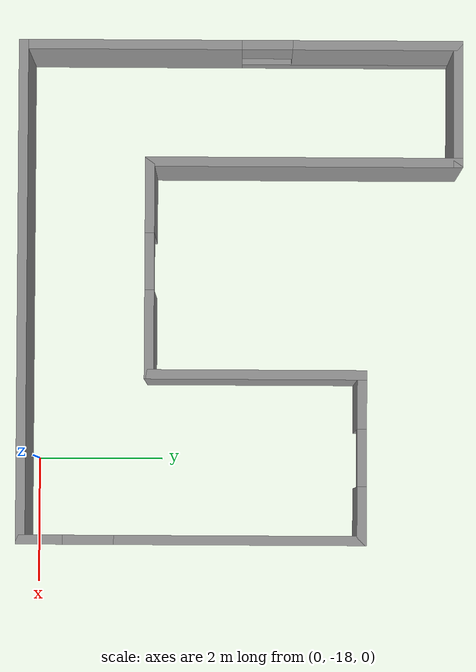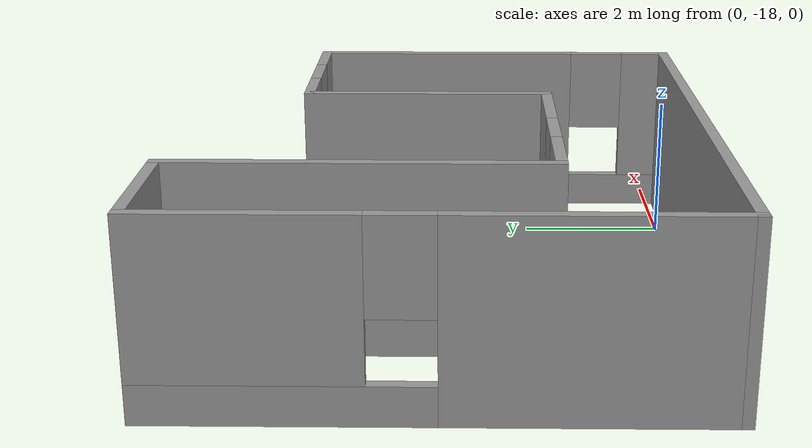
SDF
<?xml version='1.0'?>
<sdf version='1.6'>
  <model name='uHall'>
    <pose frame=''>-2.57113 -14.7501 0 0 -0 0</pose>
    <link name='Wall_12'>
      <pose frame=''>-3.9 0 0 0 -0 1.5708</pose>
      <visual name='Wall_12_Visual_0'>
        <pose frame=''>-1.74266 0 1.25 0 -0 0</pose>
        <geometry>
          <box>
            <size>3.51468 0.15 2.5</size>
          </box>
        </geometry>
        <material>
          <script>
            <uri>file://media/materials/scripts/gazebo.material</uri>
            <name>Gazebo/Grey</name>
          </script>
          <ambient>1 1 1 1</ambient>
        </material>
        <meta>
          <layer>0</layer>
        </meta>
      </visual>
      <collision name='Wall_12_Collision_0'>
        <geometry>
          <box>
            <size>3.51468 0.15 2.5</size>
          </box>
        </geometry>
        <pose frame=''>-1.74266 0 1.25 0 -0 0</pose>
      </collision>
      <visual name='Wall_12_Visual_1'>
        <pose frame=''>1.75734 0 0.25 0 -0 0</pose>
        <geometry>
          <box>
            <size>3.48532 0.15 0.5</size>
          </box>
        </geometry>
        <material>
          <script>
            <uri>file://media/materials/scripts/gazebo.material</uri>
            <name>Gazebo/Grey</name>
          </script>
          <ambient>1 1 1 1</ambient>
        </material>
        <meta>
          <layer>0</layer>
        </meta>
      </visual>
      <collision name='Wall_12_Collision_1'>
        <geometry>
          <box>
            <size>3.48532 0.15 0.5</size>
          </box>
        </geometry>
        <pose frame=''>1.75734 0 0.25 0 -0 0</pose>
      </collision>
      <visual name='Wall_12_Visual_2'>
        <pose frame=''>2.15734 0 1.5 0 -0 0</pose>
        <geometry>
          <box>
            <size>2.68532 0.15 2</size>
          </box>
        </geometry>
        <material>
          <script>
            <uri>file://media/materials/scripts/gazebo.material</uri>
            <name>Gazebo/Grey</name>
          </script>
          <ambient>1 1 1 1</ambient>
        </material>
        <meta>
          <layer>0</layer>
        </meta>
      </visual>
      <collision name='Wall_12_Collision_2'>
        <geometry>
          <box>
            <size>2.68532 0.15 2</size>
          </box>
        </geometry>
        <pose frame=''>2.15734 0 1.5 0 -0 0</pose>
      </collision>
      <visual name='Wall_12_Visual_3'>
        <pose frame=''>0.41468 0 1.9 0 -0 0</pose>
        <geometry>
          <box>
            <size>0.8 0.15 1.2</size>
          </box>
        </geometry>
        <material>
          <script>
            <uri>file://media/materials/scripts/gazebo.material</uri>
            <name>Gazebo/Grey</name>
          </script>
          <ambient>1 1 1 1</ambient>
        </material>
        <meta>
          <layer>0</layer>
        </meta>
      </visual>
      <collision name='Wall_12_Collision_3'>
        <geometry>
          <box>
            <size>0.8 0.15 1.2</size>
          </box>
        </geometry>
        <pose frame=''>0.41468 0 1.9 0 -0 0</pose>
      </collision>
    </link>
    <link name='Wall_13'>
      <collision name='Wall_13_Collision'>
        <geometry>
          <box>
            <size>2 0.15 2.5</size>
          </box>
        </geometry>
        <pose frame=''>0 0 1.25 0 -0 0</pose>
      </collision>
      <visual name='Wall_13_Visual'>
        <pose frame=''>0 0 1.25 0 -0 0</pose>
        <geometry>
          <box>
            <size>2 0.15 2.5</size>
          </box>
        </geometry>
        <material>
          <script>
            <uri>file://media/materials/scripts/gazebo.material</uri>
            <name>Gazebo/Grey</name>
          </script>
          <ambient>1 1 1 1</ambient>
        </material>
        <meta>
          <layer>0</layer>
        </meta>
      </visual>
      <pose frame=''>-2.975 3.425 0 0 -0 0</pose>
    </link>
    <link name='Wall_14'>
      <collision name='Wall_14_Collision'>
        <geometry>
          <box>
            <size>5 0.15 2.5</size>
          </box>
        </geometry>
        <pose frame=''>0 0 1.25 0 -0 0</pose>
      </collision>
      <visual name='Wall_14_Visual'>
        <pose frame=''>0 0 1.25 0 -0 0</pose>
        <geometry>
          <box>
            <size>5 0.15 2.5</size>
          </box>
        </geometry>
        <material>
          <script>
            <uri>file://media/materials/scripts/gazebo.material</uri>
            <name>Gazebo/Grey</name>
          </script>
          <ambient>1 1 1 1</ambient>
        </material>
        <meta>
          <layer>0</layer>
        </meta>
      </visual>
      <pose frame=''>-2.05 1 0 0 0 -1.5708</pose>
    </link>
    <link name='Wall_15'>
      <pose frame=''>-0.375 -1.425 0 0 -0 0</pose>
      <visual name='Wall_15_Visual_0'>
        <pose frame=''>-1.15084 0 1.25 0 -0 0</pose>
        <geometry>
          <box>
            <size>1.19833 0.15 2.5</size>
          </box>
        </geometry>
        <material>
          <script>
            <uri>file://media/materials/scripts/gazebo.material</uri>
            <name>Gazebo/Grey</name>
          </script>
          <ambient>1 1 1 1</ambient>
        </material>
        <meta>
          <layer>0</layer>
        </meta>
      </visual>
      <collision name='Wall_15_Collision_0'>
        <geometry>
          <box>
            <size>1.19833 0.15 2.5</size>
          </box>
        </geometry>
        <pose frame=''>-1.15084 0 1.25 0 -0 0</pose>
      </collision>
      <visual name='Wall_15_Visual_1'>
        <pose frame=''>1.04916 0 1.25 0 -0 0</pose>
        <geometry>
          <box>
            <size>1.40167 0.15 2.5</size>
          </box>
        </geometry>
        <material>
          <script>
            <uri>file://media/materials/scripts/gazebo.material</uri>
            <name>Gazebo/Grey</name>
          </script>
          <ambient>1 1 1 1</ambient>
        </material>
        <meta>
          <layer>0</layer>
        </meta>
      </visual>
      <collision name='Wall_15_Collision_1'>
        <geometry>
          <box>
            <size>1.40167 0.15 2.5</size>
          </box>
        </geometry>
        <pose frame=''>1.04916 0 1.25 0 -0 0</pose>
      </collision>
      <visual name='Wall_15_Visual_2'>
        <pose frame=''>-0.10167 0 2.25 0 -0 0</pose>
        <geometry>
          <box>
            <size>0.9 0.15 0.5</size>
          </box>
        </geometry>
        <material>
          <script>
            <uri>file://media/materials/scripts/gazebo.material</uri>
            <name>Gazebo/Grey</name>
          </script>
          <ambient>1 1 1 1</ambient>
        </material>
        <meta>
          <layer>0</layer>
        </meta>
      </visual>
      <collision name='Wall_15_Collision_2'>
        <geometry>
          <box>
            <size>0.9 0.15 0.5</size>
          </box>
        </geometry>
        <pose frame=''>-0.10167 0 2.25 0 -0 0</pose>
      </collision>
    </link>
    <link name='Wall_16'>
      <collision name='Wall_16_Collision'>
        <geometry>
          <box>
            <size>3.5 0.15 2.5</size>
          </box>
        </geometry>
        <pose frame=''>0 0 1.25 0 -0 0</pose>
      </collision>
      <visual name='Wall_16_Visual'>
        <pose frame=''>0 0 1.25 0 -0 0</pose>
        <geometry>
          <box>
            <size>3.5 0.15 2.5</size>
          </box>
        </geometry>
        <material>
          <script>
            <uri>file://media/materials/scripts/gazebo.material</uri>
            <name>Gazebo/Grey</name>
          </script>
          <ambient>1 1 1 1</ambient>
        </material>
        <meta>
          <layer>0</layer>
        </meta>
      </visual>
      <pose frame=''>1.3 0.25 0 0 -0 1.5708</pose>
    </link>
    <link name='Wall_17'>
      <pose frame=''>2.6 1.925 0 0 -0 0</pose>
      <visual name='Wall_17_Visual_0'>
        <pose frame=''>-0.91265 0 1.25 0 -0 0</pose>
        <geometry>
          <box>
            <size>0.924701 0.15 2.5</size>
          </box>
        </geometry>
        <material>
          <script>
            <uri>file://media/materials/scripts/gazebo.material</uri>
            <name>Gazebo/Grey</name>
          </script>
          <ambient>1 1 1 1</ambient>
        </material>
        <meta>
          <layer>0</layer>
        </meta>
      </visual>
      <collision name='Wall_17_Collision_0'>
        <geometry>
          <box>
            <size>0.924701 0.15 2.5</size>
          </box>
        </geometry>
        <pose frame=''>-0.91265 0 1.25 0 -0 0</pose>
      </collision>
      <visual name='Wall_17_Visual_1'>
        <pose frame=''>0.91235 0 1.25 0 -0 0</pose>
        <geometry>
          <box>
            <size>0.925299 0.15 2.5</size>
          </box>
        </geometry>
        <material>
          <script>
            <uri>file://media/materials/scripts/gazebo.material</uri>
            <name>Gazebo/Grey</name>
          </script>
          <ambient>1 1 1 1</ambient>
        </material>
        <meta>
          <layer>0</layer>
        </meta>
      </visual>
      <collision name='Wall_17_Collision_1'>
        <geometry>
          <box>
            <size>0.925299 0.15 2.5</size>
          </box>
        </geometry>
        <pose frame=''>0.91235 0 1.25 0 -0 0</pose>
      </collision>
      <visual name='Wall_17_Visual_2'>
        <pose frame=''>-0.000299 0 2.25 0 -0 0</pose>
        <geometry>
          <box>
            <size>0.9 0.15 0.5</size>
          </box>
        </geometry>
        <material>
          <script>
            <uri>file://media/materials/scripts/gazebo.material</uri>
            <name>Gazebo/Grey</name>
          </script>
          <ambient>1 1 1 1</ambient>
        </material>
        <meta>
          <layer>0</layer>
        </meta>
      </visual>
      <collision name='Wall_17_Collision_2'>
        <geometry>
          <box>
            <size>0.9 0.15 0.5</size>
          </box>
        </geometry>
        <pose frame=''>-0.000299 0 2.25 0 -0 0</pose>
      </collision>
    </link>
    <link name='Wall_18'>
      <pose frame=''>3.9 -0.75 0 0 0 -1.5708</pose>
      <visual name='Wall_18_Visual_0'>
        <pose frame=''>-0.769504 0 1.25 0 -0 0</pose>
        <geometry>
          <box>
            <size>3.96099 0.15 2.5</size>
          </box>
        </geometry>
        <material>
          <script>
            <uri>file://media/materials/scripts/gazebo.material</uri>
            <name>Gazebo/Grey</name>
          </script>
          <ambient>1 1 1 1</ambient>
        </material>
        <meta>
          <layer>0</layer>
        </meta>
      </visual>
      <collision name='Wall_18_Collision_0'>
        <geometry>
          <box>
            <size>3.96099 0.15 2.5</size>
          </box>
        </geometry>
        <pose frame=''>-0.769504 0 1.25 0 -0 0</pose>
      </collision>
      <visual name='Wall_18_Visual_1'>
        <pose frame=''>1.9805 0 0.25 0 -0 0</pose>
        <geometry>
          <box>
            <size>1.53901 0.15 0.5</size>
          </box>
        </geometry>
        <material>
          <script>
            <uri>file://media/materials/scripts/gazebo.material</uri>
            <name>Gazebo/Grey</name>
          </script>
          <ambient>1 1 1 1</ambient>
        </material>
        <meta>
          <layer>0</layer>
        </meta>
      </visual>
      <collision name='Wall_18_Collision_1'>
        <geometry>
          <box>
            <size>1.53901 0.15 0.5</size>
          </box>
        </geometry>
        <pose frame=''>1.9805 0 0.25 0 -0 0</pose>
      </collision>
      <visual name='Wall_18_Visual_2'>
        <pose frame=''>2.3805 0 1.5 0 -0 0</pose>
        <geometry>
          <box>
            <size>0.739009 0.15 2</size>
          </box>
        </geometry>
        <material>
          <script>
            <uri>file://media/materials/scripts/gazebo.material</uri>
            <name>Gazebo/Grey</name>
          </script>
          <ambient>1 1 1 1</ambient>
        </material>
        <meta>
          <layer>0</layer>
        </meta>
      </visual>
      <collision name='Wall_18_Collision_2'>
        <geometry>
          <box>
            <size>0.739009 0.15 2</size>
          </box>
        </geometry>
        <pose frame=''>2.3805 0 1.5 0 -0 0</pose>
      </collision>
      <visual name='Wall_18_Visual_3'>
        <pose frame=''>1.61099 0 1.9 0 -0 0</pose>
        <geometry>
          <box>
            <size>0.8 0.15 1.2</size>
          </box>
        </geometry>
        <material>
          <script>
            <uri>file://media/materials/scripts/gazebo.material</uri>
            <name>Gazebo/Grey</name>
          </script>
          <ambient>1 1 1 1</ambient>
        </material>
        <meta>
          <layer>0</layer>
        </meta>
      </visual>
      <collision name='Wall_18_Collision_3'>
        <geometry>
          <box>
            <size>0.8 0.15 1.2</size>
          </box>
        </geometry>
        <pose frame=''>1.61099 0 1.9 0 -0 0</pose>
      </collision>
    </link>
    <link name='Wall_19'>
      <collision name='Wall_19_Collision'>
        <geometry>
          <box>
            <size>7.95 0.15 2.5</size>
          </box>
        </geometry>
        <pose frame=''>0 0 1.25 0 -0 0</pose>
      </collision>
      <visual name='Wall_19_Visual'>
        <pose frame=''>0 0 1.25 0 -0 0</pose>
        <geometry>
          <box>
            <size>7.95 0.15 2.5</size>
          </box>
        </geometry>
        <material>
          <script>
            <uri>file://media/materials/scripts/gazebo.material</uri>
            <name>Gazebo/Grey</name>
          </script>
          <ambient>1 1 1 1</ambient>
        </material>
        <meta>
          <layer>0</layer>
        </meta>
      </visual>
      <pose frame=''>0 -3.425 0 0 -0 3.14159</pose>
    </link>
    <static>1</static>
  </model>
</sdf>
